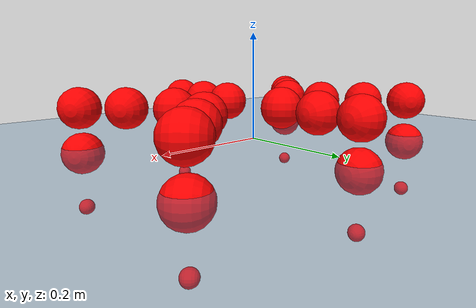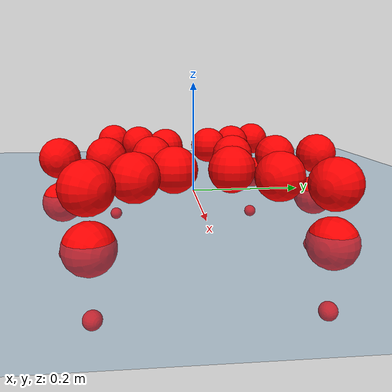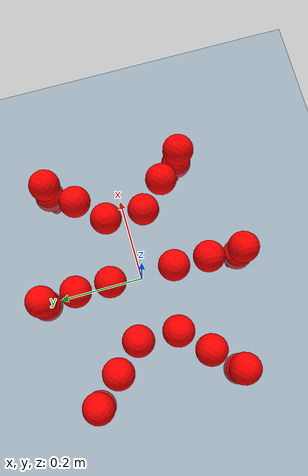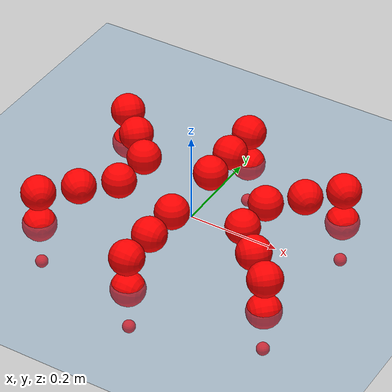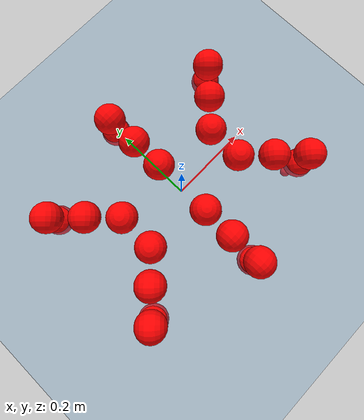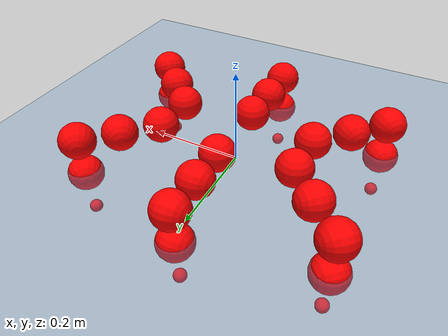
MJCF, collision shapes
<mujoco model="Golem">
  <compiler angle="radian" assetdir="assets" balanceinertia="true" inertiafromgeom="false"/>

  <option timestep="0.005" density="1.2" viscosity="2e-05"/>

  <size nkey="1"/>

  <visual>
    <quality shadowsize="8192"/>
    <map shadowclip="0.5"/>
  </visual>

  <default>
    <default class="/">
      <joint armature="0.01" damping="0.01" frictionloss="0.01"/>
      <geom contype="0" conaffinity="0" group="1" solref="-1000 -80"/>
      <site size="0.01 0.005 0.005" group="5"/>
      <general forcelimited="true" biastype="affine" gainprm="25" biasprm="0 -25 -0.5"/>
      <default class="visual">
        <geom type="mesh" group="2"/>
      </default>
      <default class="collision">
        <geom group="3"/>
      </default>
      <default class="foot">
        <geom size="0.01 0 0" condim="6" group="4" priority="1" solimp="0.015 1 0.01"/>
      </default>
      <default class="reward_collision_sphere">
        <geom group="5" rgba="1 0 0 1"/>
      </default>
    </default>
  </default>

  <asset>
    <texture type="skybox" colorspace="auto" name="//unnamed_texture_0" builtin="gradient" rgb1="0.95 0.95 0.95" rgb2="0.95 0.95 0.95" width="100" height="600"/>
    <texture type="2d" colorspace="auto" name="texplane" builtin="checker" rgb1="0.345 0.575 0.748" rgb2="0.345 0.575 0.748" markrgb="1 1 1" width="512" height="512"/>
    <material name="MatPlane" class="/" texture="texplane" texuniform="true" texrepeat="2 2" specular="0.9"/>
    <mesh name="body" class="/" file="body.stl" scale="0.001 0.001 0.001"/>
    <mesh name="coxa" class="/" file="coxa.stl" scale="0.001 0.001 0.001"/>
    <mesh name="femur" class="/" file="femur.stl" scale="0.001 0.001 0.001"/>
    <mesh name="tibia" class="/" file="tibia.stl" scale="0.001 0.001 0.001"/>
    <mesh name="tarsus" class="/" file="tarsus.stl" scale="0.001 0.001 0.001"/>
  </asset>

  <worldbody>
    <geom name="floor" class="/" size="100 100 0.125" type="plane" group="0" material="MatPlane"/>
    <light name="toplight_shadow" class="/" pos="0 0 5" dir="0.0990148 0.0990148 -0.990148" type="directional" ambient="0.04 0.04 0.04" diffuse="0.55 0.55 0.55" specular="0.12 0.12 0.12"/>
    <light name="toplight_fill" class="/" pos="0 0 5" dir="0.0990148 0.0990148 -0.990148" type="directional" castshadow="false" ambient="0.04 0.04 0.04" diffuse="0.3 0.3 0.3" specular="0.08 0.08 0.08"/>
    <body name="trunk" pos="0.000841321 -0.000166679 -0.000977988" quat="1 -5.70742e-06 -6.02145e-05 2.94459e-05">
      <inertial pos="-0.000624042 -0.00042775 -0.00365132" quat="0.999995 -0.00153494 0.00108143 -0.00236725" mass="2.93456" diaginertia="0.00719323 0.00289086 0.0134487"/>
      <joint name="//unnamed_joint_0" type="free"/>
      <geom name="//unnamed_geom_1" class="/" pos="0 0 0.0680273" quat="1 0 0 0" type="mesh" rgba="0.9 0.9 0.9 1" mesh="body"/>
      <site name="imu" class="/" pos="0.121603 -0.000445418 0.10695" size="0.00928103"/>
      <camera name="track" class="/" pos="0 -1.56349 0" quat="0.707107 0.707107 0 0" mode="trackcom"/>
      <camera name="ego_camera" class="/" pos="0.122153 0 0.106293" quat="-0.5 -0.5 0.5 0.5"/>
      <body name="coxa_RR" pos="-0.168028 -0.0654655 0.0674" quat="0.382593 6.38215e-05 -1.08016e-05 -0.923917">
        <inertial pos="-4.21767e-06 -0.000838136 0.000162201" quat="0.999997 0.00198718 -0.0012292 -0.000580785" mass="0.15685" diaginertia="0.00725521 0.00287523 0.0132936"/>
        <joint name="coxa_joint_RR" class="/" pos="0 0 0" axis="0.00221135 -0.00249068 -0.999994" stiffness="0.000576336" range="-3.14113 3.15377" armature="0.00972728" damping="0.0111282" frictionloss="0.0094327"/>
        <geom name="//unnamed_geom_2" class="/" type="mesh" rgba="0.2 0.2 0.2 1" mesh="coxa"/>
        <geom name="//unnamed_geom_3" class="reward_collision_sphere" size="0.0371241" pos="-0.0281891 0 0"/>
        <body name="femur_RR" pos="0.0566037 -0.00047656 0.000360513" quat="0.499829 -0.500185 0.499708 0.500279">
          <inertial pos="-0.000313154 -0.000954233 0.000951076" quat="0.999999 0.000384313 -0.00056436 0.000794272" mass="0.159831" diaginertia="0.00732006 0.00292642 0.0135592"/>
          <joint name="femur_joint_RR" class="/" pos="0 0 0" axis="-0.0013489 0.00016751 -0.999999" stiffness="0.00232487" range="-3.13371 3.1287" armature="0.00964573" damping="0.000851422" frictionloss="0.00897702"/>
          <geom name="//unnamed_geom_4" class="/" type="mesh" rgba="0.9 0.9 0.9 1" mesh="femur"/>
          <geom name="//unnamed_geom_5" class="reward_collision_sphere" size="0.0371241"/>
          <body name="tibia_RR" pos="0.000988134 -0.0847703 0.000681854" quat="0.000196759 1 -0.000363756 0.000204318">
            <inertial pos="7.52329e-05 0.000959376 0.000198984" quat="0.999997 0.000111897 0.00200552 0.00128323" mass="0.15984" diaginertia="0.00731147 0.00290283 0.0134165"/>
            <joint name="tibia_joint_RR" class="/" pos="0 0 0" axis="-0.00634859 0.000513508 0.99998" range="-3.15543 3.15092" armature="0.0095157" damping="0.00170557" frictionloss="0.00933813"/>
            <geom name="//unnamed_geom_6" class="/" type="mesh" rgba="0.2 0.2 0.2 1" mesh="tibia"/>
            <geom name="//unnamed_geom_7" class="reward_collision_sphere" size="0.0371241"/>
            <body name="tarsus_RR" pos="0.0818012 0.000999102 0.000407145" quat="1 -4.55806e-05 -2.32218e-05 -2.67695e-05">
              <inertial pos="0.0568565 0.000827684 0.000555084" quat="0.501008 0.500269 0.50074 0.497978" mass="0.161226" diaginertia="0.0073786 0.0029041 0.0136334"/>
              <joint name="tarsus_joint_RR" class="/" pos="0 0 0" axis="-0.000583178 0.0012226 0.999999" range="-3.13044 3.14018" armature="0.00900519" damping="0.00835117" frictionloss="0.0091263"/>
              <geom name="//unnamed_geom_8" class="/" type="mesh" rgba="0.9 0.9 0.9 1" mesh="tarsus"/>
              <geom name="foot_1" class="foot" size="0.00941827" pos="0.105239 0 0" quat="0 -0.707107 0 0.707107"/>
              <geom name="//unnamed_geom_10" class="reward_collision_sphere" size="0.0371241"/>
              <geom name="//unnamed_geom_11" class="reward_collision_sphere" size="0.0139215" pos="0.101011 0 0"/>
              <site name="foot_1" class="foot" pos="0.105239 0 0" quat="0 -0.707107 0 0.707107" size="0.00928103"/>
            </body>
          </body>
        </body>
      </body>
      <body name="coxa_RM" pos="-0.000610522 -0.105012 0.0676402" quat="0.70687 -0.000278087 0.00039964 -0.707344">
        <inertial pos="3.42482e-05 -7.89506e-05 0.00108564" quat="0.999998 -0.00143536 -0.00147051 0.000377191" mass="0.15908" diaginertia="0.00714607 0.00289171 0.0136165"/>
        <joint name="coxa_joint_RM" class="/" pos="0 0 0" axis="0.000245081 -4.64877e-05 -1" range="-3.16376 3.13492" armature="0.00957386" damping="0.0125403" frictionloss="0.0093344"/>
        <geom name="//unnamed_geom_12" class="/" type="mesh" rgba="0.2 0.2 0.2 1" mesh="coxa"/>
        <geom name="//unnamed_geom_13" class="reward_collision_sphere" size="0.0371241" pos="-0.0281891 0 0"/>
        <body name="femur_RM" pos="0.0554413 -0.000942653 -0.00100069" quat="0.500128 -0.499944 0.499936 0.499991">
          <inertial pos="-0.000664805 0.000602925 -0.000565244" quat="0.999999 -0.000636199 0.000902084 -0.000117974" mass="0.159372" diaginertia="0.00730309 0.00292397 0.0135367"/>
          <joint name="femur_joint_RM" class="/" pos="0 0 0" axis="0.00131449 -0.00114186 -0.999998" range="-3.13728 3.13666" armature="0.00938014" damping="0.0118741" frictionloss="0.00955793"/>
          <geom name="//unnamed_geom_14" class="/" type="mesh" rgba="0.9 0.9 0.9 1" mesh="femur"/>
          <geom name="//unnamed_geom_15" class="reward_collision_sphere" size="0.0371241"/>
          <body name="tibia_RM" pos="0.00070862 -0.0836365 -7.05036e-05" quat="2.96214e-05 1 -3.01012e-05 -0.000294812">
            <inertial pos="0.000663492 0.000601682 -0.000304274" quat="0.999998 -0.00170203 -0.000478861 0.00108842" mass="0.161454" diaginertia="0.00738256 0.00295324 0.0135586"/>
            <joint name="tibia_joint_RM" class="/" pos="0 0 0" axis="0.00272493 -0.00265829 0.999993" range="-3.15401 3.10814" armature="0.0089474" damping="0" frictionloss="0.00915752"/>
            <geom name="//unnamed_geom_16" class="/" type="mesh" rgba="0.2 0.2 0.2 1" mesh="tibia"/>
            <geom name="//unnamed_geom_17" class="reward_collision_sphere" size="0.0371241"/>
            <body name="tarsus_RM" pos="0.0815896 -0.000963586 -0.000615409" quat="1 -3.08918e-05 -0.000164592 -0.000234205">
              <inertial pos="0.055614 0.00125932 -0.000268777" quat="0.499636 0.499732 0.500628 0.500003" mass="0.158633" diaginertia="0.00736209 0.00295883 0.0138258"/>
              <joint name="tarsus_joint_RM" class="/" pos="0 0 0" axis="-0.00182673 0.00552018 0.999983" range="-3.13795 3.12881" armature="0.00884112" damping="0.00456625" frictionloss="0.00929484"/>
              <geom name="//unnamed_geom_18" class="/" type="mesh" rgba="0.9 0.9 0.9 1" mesh="tarsus"/>
              <geom name="foot_2" class="foot" size="0.00910996" pos="0.105239 0 0" quat="0 -0.707107 0 0.707107"/>
              <geom name="//unnamed_geom_20" class="reward_collision_sphere" size="0.0371241"/>
              <geom name="//unnamed_geom_21" class="reward_collision_sphere" size="0.0139215" pos="0.101011 0 0"/>
              <site name="foot_2" class="foot" pos="0.105239 0 0" quat="0 -0.707107 0 0.707107" size="0.00928103"/>
            </body>
          </body>
        </body>
      </body>
      <body name="coxa_RF" pos="0.16638 -0.0639558 0.0682568" quat="0.923942 0.000102513 -0.000283266 -0.382532">
        <inertial pos="-0.000204875 0.000310903 0.000292401" quat="0.999989 -0.00342829 -0.00320644 -0.000402115" mass="0.162642" diaginertia="0.00754112 0.00291736 0.013958"/>
        <joint name="coxa_joint_RF" class="/" pos="0 0 0" axis="0.00653863 0.00144008 -0.999978" range="-3.12082 3.13731" armature="0.0094223" damping="0.00416926" frictionloss="0.00887354"/>
        <geom name="//unnamed_geom_22" class="/" type="mesh" rgba="0.2 0.2 0.2 1" mesh="coxa"/>
        <geom name="//unnamed_geom_23" class="reward_collision_sphere" size="0.0371241" pos="-0.0281891 0 0"/>
        <body name="femur_RF" pos="0.0563498 0.000181402 0.00056849" quat="0.499891 -0.500017 0.500173 0.499919">
          <inertial pos="-0.00033717 0.000844294 0.000468242" quat="0.999998 -7.286e-05 0.000265595 0.00175" mass="0.157135" diaginertia="0.00727198 0.00287521 0.0134955"/>
          <joint name="femur_joint_RF" class="/" pos="0 0 0" axis="-0.000639085 -0.00043198 -1" range="-3.15198 3.12338" armature="0.00864854" damping="0.0117888" frictionloss="0.00871106"/>
          <geom name="//unnamed_geom_24" class="/" type="mesh" rgba="0.9 0.9 0.9 1" mesh="femur"/>
          <geom name="//unnamed_geom_25" class="reward_collision_sphere" size="0.0371241"/>
          <body name="tibia_RF" pos="1.49365e-05 -0.0836022 0.000487288" quat="6.56209e-06 1 8.76093e-06 3.94241e-05">
            <inertial pos="-0.000592491 -0.00024217 -0.000145485" quat="0.999999 -0.000236772 0.00126734 -0.000359639" mass="0.161748" diaginertia="0.00743152 0.00295233 0.0137201"/>
            <joint name="tibia_joint_RF" class="/" pos="0 0 0" axis="-0.000379524 0.00316134 0.999995" range="-3.15668 3.13391" armature="0.0093649" damping="0" frictionloss="0.00884927"/>
            <geom name="//unnamed_geom_26" class="/" type="mesh" rgba="0.2 0.2 0.2 1" mesh="tibia"/>
            <geom name="//unnamed_geom_27" class="reward_collision_sphere" size="0.0371241"/>
            <body name="tarsus_RF" pos="0.0817345 -0.000237896 0.000353531" quat="1 -0.000281966 -0.000233002 1.85281e-06">
              <inertial pos="0.0560321 0.00115046 0.000189319" quat="0.494937 0.498612 0.501772 0.504627" mass="0.162612" diaginertia="0.00741666 0.00292817 0.0135457"/>
              <joint name="tarsus_joint_RF" class="/" pos="0 0 0" axis="-0.000194856 0.00147409 0.999999" range="-3.14486 3.13706" armature="0.00887575" damping="0.00758675" frictionloss="0.00923036"/>
              <geom name="//unnamed_geom_28" class="/" type="mesh" rgba="0.9 0.9 0.9 1" mesh="tarsus"/>
              <geom name="foot_3" class="foot" size="0.00943409" pos="0.105239 0 0" quat="0 -0.707107 0 0.707107"/>
              <geom name="//unnamed_geom_30" class="reward_collision_sphere" size="0.0371241"/>
              <geom name="//unnamed_geom_31" class="reward_collision_sphere" size="0.0139215" pos="0.101011 0 0"/>
              <site name="foot_3" class="foot" pos="0.105239 0 0" quat="0 -0.707107 0 0.707107" size="0.00928103"/>
            </body>
          </body>
        </body>
      </body>
      <body name="coxa_LR" pos="-0.165994 0.067659 0.0687589" quat="0.382892 -6.82232e-05 3.84925e-05 0.923793">
        <inertial pos="-0.000507469 -0.00021673 0.000785818" quat="0.999991 0.00283607 0.00281102 -0.00173937" mass="0.162177" diaginertia="0.00727774 0.00294121 0.013552"/>
        <joint name="coxa_joint_LR" class="/" pos="0 0 0" axis="-0.00194691 -0.00242089 -0.999995" range="-3.13782 3.12166" armature="0.00914958" damping="0.00843443" frictionloss="0.0090773"/>
        <geom name="//unnamed_geom_32" class="/" type="mesh" rgba="0.2 0.2 0.2 1" mesh="coxa"/>
        <geom name="//unnamed_geom_33" class="reward_collision_sphere" size="0.0371241" pos="-0.0281891 0 0"/>
        <body name="femur_LR" pos="0.0570111 -0.00218364 -0.000359669" quat="0.500082 -0.500078 0.49972 0.50012">
          <inertial pos="-0.000362 -0.000959991 0.000547185" quat="1 -5.59291e-05 0.000203846 0.000299248" mass="0.159359" diaginertia="0.00715386 0.00289854 0.0134552"/>
          <joint name="femur_joint_LR" class="/" pos="0 0 0" axis="0.00123317 -0.00414105 0.999991" range="-3.12675 3.1481" armature="0.0100104" damping="0.0099158" frictionloss="0.00927012"/>
          <geom name="//unnamed_geom_34" class="/" type="mesh" rgba="0.9 0.9 0.9 1" mesh="femur"/>
          <geom name="//unnamed_geom_35" class="reward_collision_sphere" size="0.0371241"/>
          <body name="tibia_LR" pos="0.000154183 -0.0862166 -0.000630603" quat="-5.0524e-06 1 -4.38633e-07 -4.84746e-07">
            <inertial pos="-0.000609328 -0.000488756 0.000335423" quat="0.999989 0.00323511 0.000988877 0.00323378" mass="0.161934" diaginertia="0.00746519 0.00290738 0.0135043"/>
            <joint name="tibia_joint_LR" class="/" pos="0 0 0" axis="-2.10211e-05 -1.436e-05 -1" range="-3.14052 3.13141" armature="0.00933612" damping="0.000968796" frictionloss="0.00896439"/>
            <geom name="//unnamed_geom_36" class="/" type="mesh" rgba="0.2 0.2 0.2 1" mesh="tibia"/>
            <geom name="//unnamed_geom_37" class="reward_collision_sphere" size="0.0371241"/>
            <body name="tarsus_LR" pos="0.0846781 0.00121213 0.00133556" quat="1 -0.000277332 7.3213e-05 0.000294694">
              <inertial pos="0.0586248 -0.000626474 0.000472903" quat="0.501064 0.499573 0.500286 0.499074" mass="0.161815" diaginertia="0.0073146 0.00289076 0.0136403"/>
              <joint name="tarsus_joint_LR" class="/" pos="0 0 0" axis="-0.000248524 -0.00545955 -0.999985" range="-3.13244 3.13511" armature="0.00929989" damping="0.0269653" frictionloss="0.00942908"/>
              <geom name="//unnamed_geom_38" class="/" type="mesh" rgba="0.9 0.9 0.9 1" mesh="tarsus"/>
              <geom name="foot_4" class="foot" size="0.00934031" pos="0.105239 0 0" quat="0.707107 0 -0.707107 0"/>
              <geom name="//unnamed_geom_40" class="reward_collision_sphere" size="0.0371241"/>
              <geom name="//unnamed_geom_41" class="reward_collision_sphere" size="0.0139215" pos="0.101011 0 0"/>
              <site name="foot_4" class="foot" pos="0.105239 0 0" quat="0.707107 0 -0.707107 0" size="0.00928103"/>
            </body>
          </body>
        </body>
      </body>
      <body name="coxa_LM" pos="0.000369064 0.102469 0.0682324" quat="0.707509 -0.000110827 -2.53276e-05 0.706705">
        <inertial pos="-0.000522956 -0.0004617 -0.000365681" quat="0.999989 -0.00270557 0.00352779 -0.00154955" mass="0.160095" diaginertia="0.0073286 0.00295479 0.013598"/>
        <joint name="coxa_joint_LM" class="/" pos="0 0 0" axis="0.00268915 0.000607825 -0.999996" range="-3.15612 3.16266" armature="0.00930039" damping="0.00957316" frictionloss="0.00922016"/>
        <geom name="//unnamed_geom_42" class="/" type="mesh" rgba="0.2 0.2 0.2 1" mesh="coxa"/>
        <geom name="//unnamed_geom_43" class="reward_collision_sphere" size="0.0371241" pos="-0.0281891 0 0"/>
        <body name="femur_LM" pos="0.0538188 0.00106313 -0.000508078" quat="0.499926 -0.500052 0.49988 0.500142">
          <inertial pos="-0.000627511 -0.000815545 0.000641271" quat="1 -0.000416948 -0.00031997 0.000190507" mass="0.160955" diaginertia="0.00726803 0.00291511 0.0134801"/>
          <joint name="femur_joint_LM" class="/" pos="0 0 0" axis="0.00078252 0.00468647 0.999989" stiffness="0.000177006" range="-3.15271 3.12781" armature="0.00912834" damping="0.000290396" frictionloss="0.00896407"/>
          <geom name="//unnamed_geom_44" class="/" type="mesh" rgba="0.9 0.9 0.9 1" mesh="femur"/>
          <geom name="//unnamed_geom_45" class="reward_collision_sphere" size="0.0371241"/>
          <body name="tibia_LM" pos="-0.000816225 -0.081238 0.00130593" quat="0.000143142 1 -0.000105933 -8.02784e-05">
            <inertial pos="-0.000975933 -0.000784501 -0.000317325" quat="0.999996 0.00212161 0.0016471 0.000143012" mass="0.156628" diaginertia="0.00723668 0.0028433 0.0132595"/>
            <joint name="tibia_joint_LM" class="/" pos="0 0 0" axis="0.00332034 0.00410928 -0.999986" range="-3.13451 3.1381" armature="0.00906915" damping="0.000898763" frictionloss="0.00939914"/>
            <geom name="//unnamed_geom_46" class="/" type="mesh" rgba="0.2 0.2 0.2 1" mesh="tibia"/>
            <geom name="//unnamed_geom_47" class="reward_collision_sphere" size="0.0371241"/>
            <body name="tarsus_LM" pos="0.0826373 -0.000288072 -0.00038963" quat="1 -0.000262205 -0.000137616 8.05447e-05">
              <inertial pos="0.0567129 -0.000911886 -0.000175793" quat="0.501169 0.500522 0.502163 0.496125" mass="0.161476" diaginertia="0.00721674 0.002911 0.0135211"/>
              <joint name="tarsus_joint_LM" class="/" pos="0 0 0" axis="0.000389308 0.000184158 -1" range="-3.13159 3.13072" armature="0.00922112" damping="0" frictionloss="0.009314"/>
              <geom name="//unnamed_geom_48" class="/" type="mesh" rgba="0.9 0.9 0.9 1" mesh="tarsus"/>
              <geom name="foot_5" class="foot" size="0.00889602" pos="0.105239 0 0" quat="0.707107 0 -0.707107 0"/>
              <geom name="//unnamed_geom_50" class="reward_collision_sphere" size="0.0371241"/>
              <geom name="//unnamed_geom_51" class="reward_collision_sphere" size="0.0139215" pos="0.101011 0 0"/>
              <site name="foot_5" class="foot" pos="0.105239 0 0" quat="0.707107 0 -0.707107 0" size="0.00928103"/>
            </body>
          </body>
        </body>
      </body>
      <body name="coxa_LF" pos="0.168123 0.0660652 0.0676955" quat="0.923762 -0.000243208 -7.73823e-05 0.382967">
        <inertial pos="-0.00016951 0.000102888 8.42726e-05" quat="1 0.000138303 -0.000205702 -9.43402e-05" mass="0.161323" diaginertia="0.00731102 0.00288754 0.0137068"/>
        <joint name="coxa_joint_LF" class="/" pos="0 0 0" axis="0.00117463 -0.00298799 -0.999995" range="-3.12879 3.14519" armature="0.00943214" damping="0" frictionloss="0.00931871"/>
        <geom name="//unnamed_geom_52" class="/" type="mesh" rgba="0.2 0.2 0.2 1" mesh="coxa"/>
        <geom name="//unnamed_geom_53" class="reward_collision_sphere" size="0.0371241" pos="-0.0281891 0 0"/>
        <body name="femur_LF" pos="0.0559028 0.000942375 -0.000570814" quat="0.499794 -0.499901 0.500218 0.500087">
          <inertial pos="-9.99069e-05 -0.000365045 0.000570303" quat="0.999994 -0.00171804 0.000705857 0.00289888" mass="0.16275" diaginertia="0.00734414 0.00290913 0.0135241"/>
          <joint name="femur_joint_LF" class="/" pos="0 0 0" axis="-0.00093417 0.000630115 0.999999" range="-3.13149 3.1387" armature="0.00916621" damping="0" frictionloss="0.00941028"/>
          <geom name="//unnamed_geom_54" class="/" type="mesh" rgba="0.9 0.9 0.9 1" mesh="femur"/>
          <geom name="//unnamed_geom_55" class="reward_collision_sphere" size="0.0371241"/>
          <body name="tibia_LF" pos="0.000148311 -0.0831759 0.000895247" quat="0.000176398 1 -0.000177634 -0.000363494">
            <inertial pos="0.000307278 0.000809349 -0.000558111" quat="0.999992 0.00198756 -0.0011197 0.0033507" mass="0.159114" diaginertia="0.00728665 0.0029315 0.0135892"/>
            <joint name="tibia_joint_LF" class="/" pos="0 0 0" axis="0.000790799 0.000475837 -1" range="-3.1108 3.12228" armature="0.00918171" damping="0.00331495" frictionloss="0.00930094"/>
            <geom name="//unnamed_geom_56" class="/" type="mesh" rgba="0.2 0.2 0.2 1" mesh="tibia"/>
            <geom name="//unnamed_geom_57" class="reward_collision_sphere" size="0.0371241"/>
            <body name="tarsus_LF" pos="0.0831408 0.00035058 -0.000614788" quat="1 -0.000441228 -2.32767e-05 -0.000188214">
              <inertial pos="0.0557023 0.00047237 -6.73529e-05" quat="0.499714 0.500492 0.499933 0.499861" mass="0.162606" diaginertia="0.00744606 0.00296892 0.0138169"/>
              <joint name="tarsus_joint_LF" class="/" pos="0 0 0" axis="-0.00198763 -0.000822671 -0.999998" range="-3.14064 3.14067" armature="0.00946096" damping="0.0180077" frictionloss="0.0098908"/>
              <geom name="//unnamed_geom_58" class="/" type="mesh" rgba="0.9 0.9 0.9 1" mesh="tarsus"/>
              <geom name="foot_6" class="foot" size="0.00925386" pos="0.105239 0 0" quat="0.707107 0 -0.707107 0"/>
              <geom name="//unnamed_geom_60" class="reward_collision_sphere" size="0.0371241"/>
              <geom name="//unnamed_geom_61" class="reward_collision_sphere" size="0.0139215" pos="0.101011 0 0"/>
              <site name="foot_6" class="foot" pos="0.105239 0 0" quat="0.707107 0 -0.707107 0" size="0.00928103"/>
            </body>
          </body>
        </body>
      </body>
    </body>
  </worldbody>

  <contact>
    <pair class="/" geom1="floor" geom2="foot_1" name="//unnamed_contact_0"/>
    <pair class="/" geom1="floor" geom2="foot_2" name="//unnamed_contact_1"/>
    <pair class="/" geom1="floor" geom2="foot_3" name="//unnamed_contact_2"/>
    <pair class="/" geom1="floor" geom2="foot_4" name="//unnamed_contact_3"/>
    <pair class="/" geom1="floor" geom2="foot_5" name="//unnamed_contact_4"/>
    <pair class="/" geom1="floor" geom2="foot_6" name="//unnamed_contact_5"/>
  </contact>

  <actuator>
    <general name="coxa_joint_RR" class="/" joint="coxa_joint_RR" forcerange="-6.55686 6.55686" gainprm="22.6561" biasprm="0 -22.6561 -0.485289"/>
    <general name="femur_joint_RR" class="/" joint="femur_joint_RR" forcerange="-6.64756 6.64756" gainprm="22.6561" biasprm="0 -22.6561 -0.485289"/>
    <general name="tibia_joint_RR" class="/" joint="tibia_joint_RR" forcerange="-6.87204 6.87204" gainprm="22.6561" biasprm="0 -22.6561 -0.485289"/>
    <general name="tarsus_joint_RR" class="/" joint="tarsus_joint_RR" forcerange="-6.79948 6.79948" gainprm="22.6561" biasprm="0 -22.6561 -0.485289"/>
    <general name="coxa_joint_RM" class="/" joint="coxa_joint_RM" forcerange="-6.6143 6.6143" gainprm="22.6561" biasprm="0 -22.6561 -0.485289"/>
    <general name="femur_joint_RM" class="/" joint="femur_joint_RM" forcerange="-6.9074 6.9074" gainprm="22.6561" biasprm="0 -22.6561 -0.485289"/>
    <general name="tibia_joint_RM" class="/" joint="tibia_joint_RM" forcerange="-6.74779 6.74779" gainprm="22.6561" biasprm="0 -22.6561 -0.485289"/>
    <general name="tarsus_joint_RM" class="/" joint="tarsus_joint_RM" forcerange="-6.85128 6.85128" gainprm="22.6561" biasprm="0 -22.6561 -0.485289"/>
    <general name="coxa_joint_RF" class="/" joint="coxa_joint_RF" forcerange="-6.80139 6.80139" gainprm="22.6561" biasprm="0 -22.6561 -0.485289"/>
    <general name="femur_joint_RF" class="/" joint="femur_joint_RF" forcerange="-7.13276 7.13276" gainprm="22.6561" biasprm="0 -22.6561 -0.485289"/>
    <general name="tibia_joint_RF" class="/" joint="tibia_joint_RF" forcerange="-6.96971 6.96971" gainprm="22.6561" biasprm="0 -22.6561 -0.485289"/>
    <general name="tarsus_joint_RF" class="/" joint="tarsus_joint_RF" forcerange="-6.885 6.885" gainprm="22.6561" biasprm="0 -22.6561 -0.485289"/>
    <general name="coxa_joint_LR" class="/" joint="coxa_joint_LR" forcerange="-6.7558 6.7558" gainprm="22.6561" biasprm="0 -22.6561 -0.485289"/>
    <general name="femur_joint_LR" class="/" joint="femur_joint_LR" forcerange="-6.79019 6.79019" gainprm="22.6561" biasprm="0 -22.6561 -0.485289"/>
    <general name="tibia_joint_LR" class="/" joint="tibia_joint_LR" forcerange="-7.09672 7.09672" gainprm="22.6561" biasprm="0 -22.6561 -0.485289"/>
    <general name="tarsus_joint_LR" class="/" joint="tarsus_joint_LR" forcerange="-6.9672 6.9672" gainprm="22.6561" biasprm="0 -22.6561 -0.485289"/>
    <general name="coxa_joint_LM" class="/" joint="coxa_joint_LM" forcerange="-6.7057 6.7057" gainprm="22.6561" biasprm="0 -22.6561 -0.485289"/>
    <general name="femur_joint_LM" class="/" joint="femur_joint_LM" forcerange="-6.71149 6.71149" gainprm="22.6561" biasprm="0 -22.6561 -0.485289"/>
    <general name="tibia_joint_LM" class="/" joint="tibia_joint_LM" forcerange="-6.79074 6.79074" gainprm="22.6561" biasprm="0 -22.6561 -0.485289"/>
    <general name="tarsus_joint_LM" class="/" joint="tarsus_joint_LM" forcerange="-6.94002 6.94002" gainprm="22.6561" biasprm="0 -22.6561 -0.485289"/>
    <general name="coxa_joint_LF" class="/" joint="coxa_joint_LF" forcerange="-6.80256 6.80256" gainprm="22.6561" biasprm="0 -22.6561 -0.485289"/>
    <general name="femur_joint_LF" class="/" joint="femur_joint_LF" forcerange="-6.85423 6.85423" gainprm="22.6561" biasprm="0 -22.6561 -0.485289"/>
    <general name="tibia_joint_LF" class="/" joint="tibia_joint_LF" forcerange="-6.77633 6.77633" gainprm="22.6561" biasprm="0 -22.6561 -0.485289"/>
    <general name="tarsus_joint_LF" class="/" joint="tarsus_joint_LF" forcerange="-6.8187 6.8187" gainprm="22.6561" biasprm="0 -22.6561 -0.485289"/>
  </actuator>

  <sensor>
    <gyro site="imu" name="imu_angular_velocity"/>
    <velocimeter site="imu" name="imu_linear_velocity"/>
    <framelinvel objtype="site" objname="foot_1" name="foot_1_global_linear_velocity"/>
    <framelinvel objtype="site" objname="foot_2" name="foot_2_global_linear_velocity"/>
    <framelinvel objtype="site" objname="foot_3" name="foot_3_global_linear_velocity"/>
    <framelinvel objtype="site" objname="foot_4" name="foot_4_global_linear_velocity"/>
    <framelinvel objtype="site" objname="foot_5" name="foot_5_global_linear_velocity"/>
    <framelinvel objtype="site" objname="foot_6" name="foot_6_global_linear_velocity"/>
  </sensor>

  <keyframe>
    <key name="home" qpos="0 0 0.1457 1 0 0 0 0 0 0 0 0 0 0 0 0 0 0 0 0 0 0 0 0 0 0 0 0 0 0 0"/>
  </keyframe>
</mujoco>
